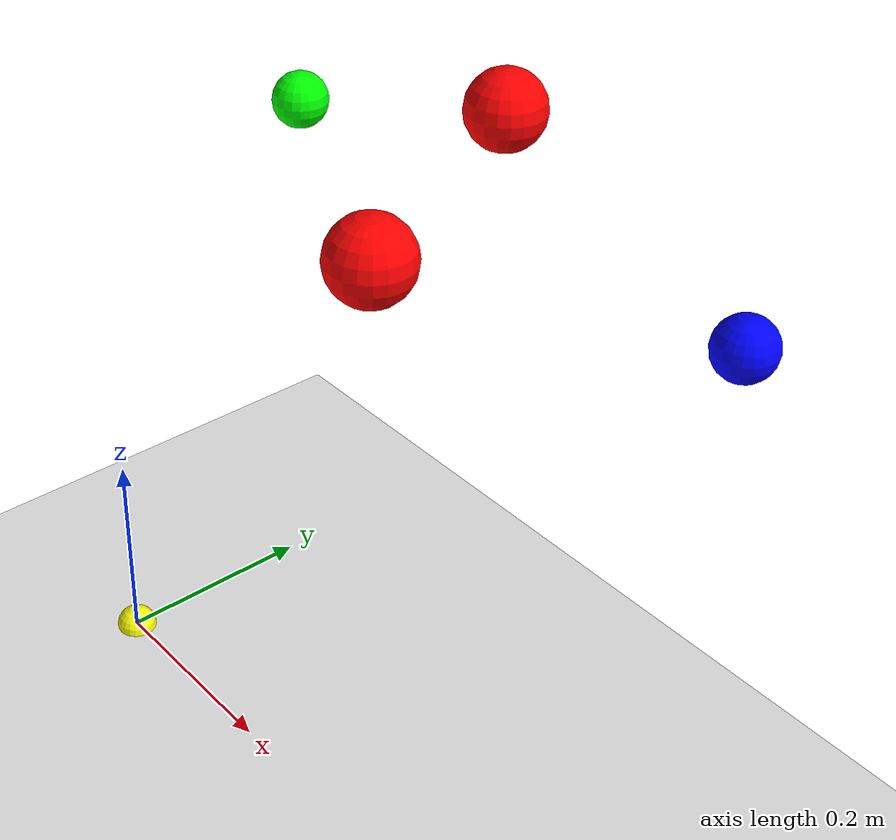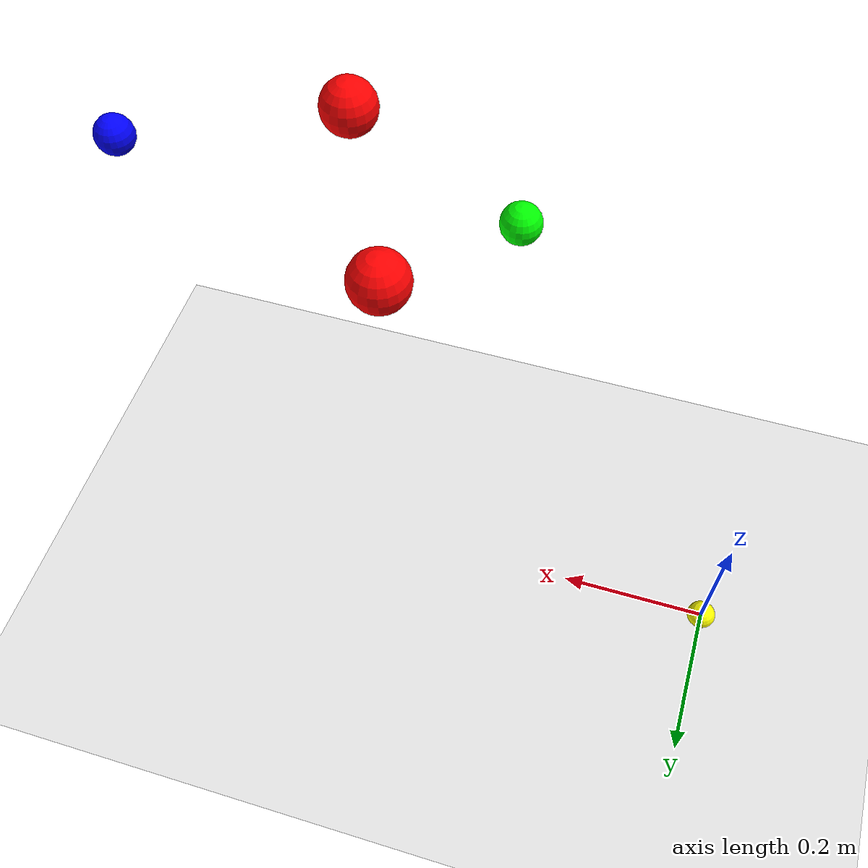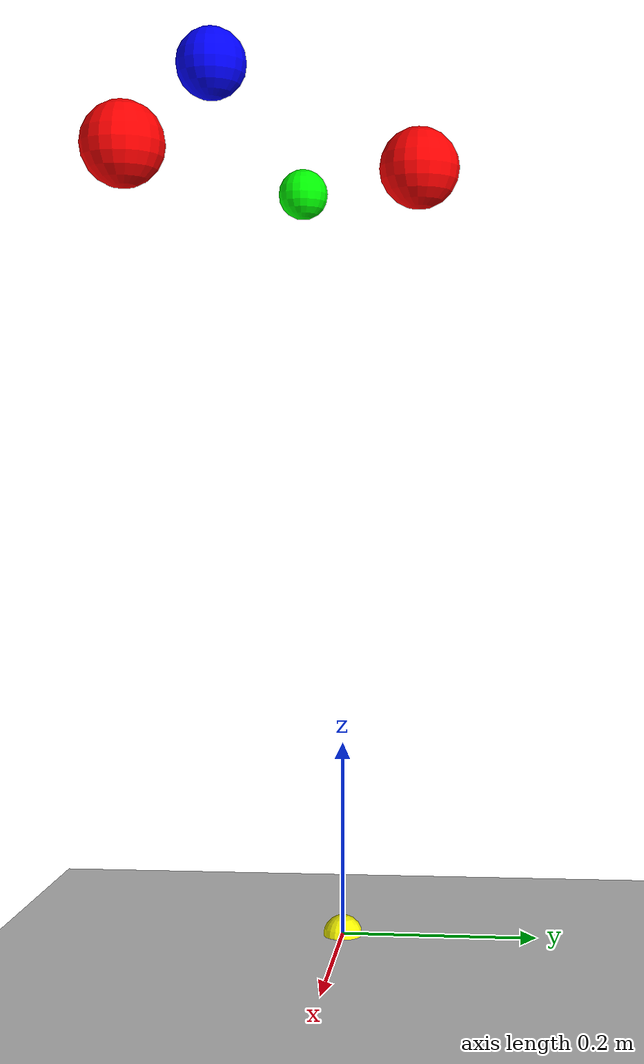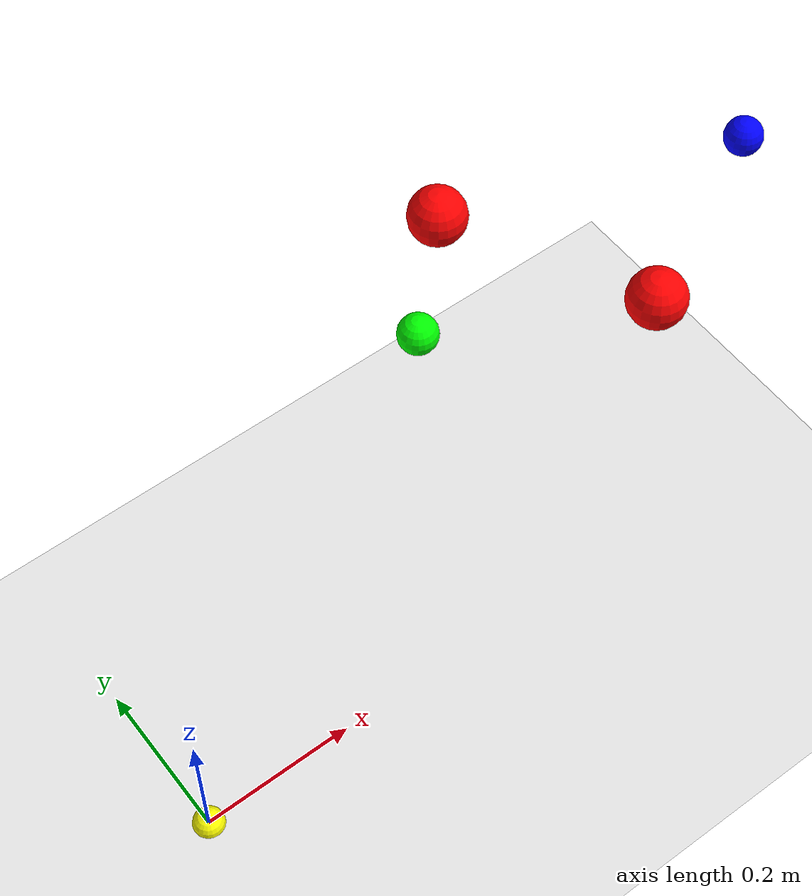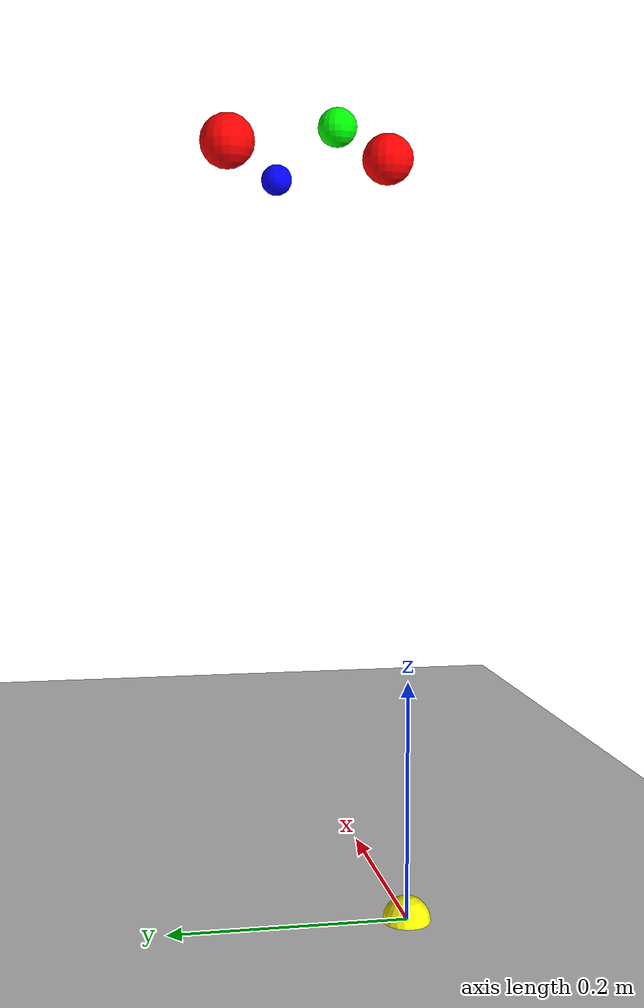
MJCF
<?xml version='1.0' encoding='utf-8'?>
<mujoco model="dynamic_obstacle_scene">
	<compiler angle="radian" />
	<option timestep="0.01" />
	<worldbody>
		<geom name="ground" type="plane" pos="0 0 0" size="2 2 0.1" rgba="0.9 0.9 0.9 1" />
		<site name="start" pos="0.3 0.0 0.7" size="0.02" rgba="0 1 0 1" />
		<site name="end" pos="0.7 0.0 0.7" size="0.02" rgba="0 0 1 1" />
		<geom name="obstacle_0" type="sphere" pos="0.4 0.1 0.7" size="0.03" rgba="1 0 0 1" />
		<geom name="obstacle_1" type="sphere" pos="0.5 -0.1 0.7" size="0.03" rgba="1 0 0 1" />
		<body name="trajectory_marker" mocap="true">
			<geom type="sphere" size="0.02" rgba="1 1 0 1" />
		</body>
	</worldbody>
</mujoco>
